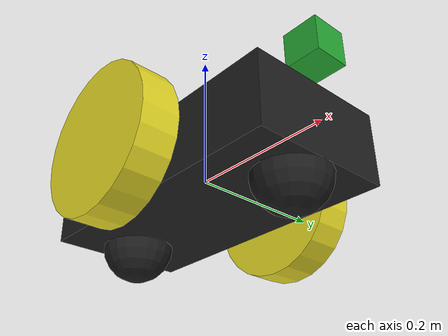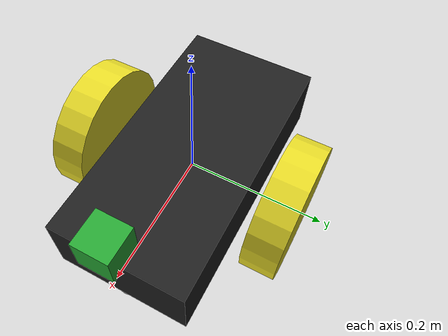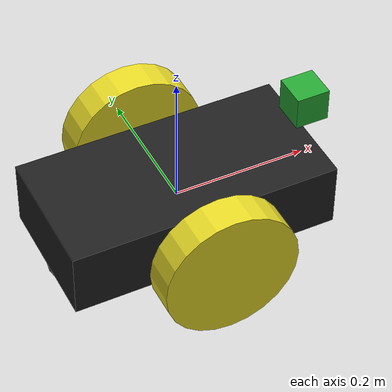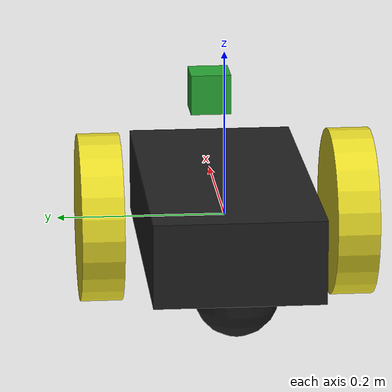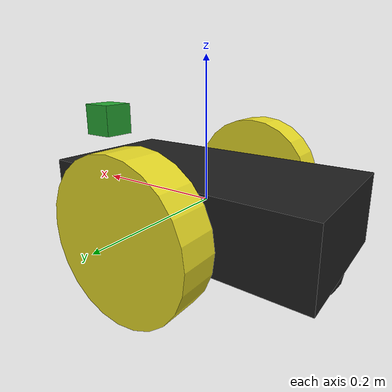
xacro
<?xml version='1.0'?>

<robot name="myrobot" xmlns:xacro="http://www.ros.org/wiki/xacro">

  <xacro:property name="cameraSize" value="0.05"/>
  <xacro:property name="cameraMass" value="0.1"/>

  <xacro:include filename="$(find m2wr_description)/urdf/materials.xacro"/>
  <xacro:include filename="$(find m2wr_description)/urdf/m2wr.gazebo"/>

  <link name='chassis'>
    <pose>0 0 0.1 0 0 0</pose>

    <inertial>
      <mass value="5.0"/>
      <origin xyz="0.0 0 0.1" rpy=" 0 0 0"/>
      <inertia
          ixx="0.1" ixy="0" ixz="0"
          iyy="0.1" iyz="0"
          izz="0.1"
      />
    </inertial>

    <collision name='collision'>
      <geometry>
        <box size=".4 .2 .1"/>
      </geometry>
    </collision>

    <visual name='chassis_visual'>
      <origin xyz="0 0 0" rpy=" 0 0 0"/>
      <geometry>
        <box size=".4 .2 .1"/>
      </geometry>
      <material name="black"/>
    </visual>
    <collision name='caster_collision'>
      <origin xyz="-0.15 0 -0.05" rpy=" 0 0 0"/>
      <geometry>
        <sphere radius="0.05"/>
      </geometry>
    </collision>

    <visual name='caster_visual'>
      <origin xyz="-0.15 0 -0.05" rpy=" 0 0 0"/>
      <geometry>
        <sphere radius="0.05"/>
      </geometry>
    </visual>

    <collision name='caster_front_collision'>
      <origin xyz="0.15 0 -0.05" rpy=" 0 0 0"/>
      <geometry>
        <sphere radius="0.05"/>
      </geometry>
    </collision>

    <visual name='caster_front_visual'>
      <origin xyz="0.15 0 -0.05" rpy=" 0 0 0"/>
      <geometry>
        <sphere radius="0.05"/>
      </geometry>
    </visual>

  </link>

  <link name="left_wheel">
    <!--origin xyz="0.1 0.13 0.1" rpy="0 1.5707 1.5707"/-->
    <collision name="collision">
      <origin xyz="0 0 0" rpy="0 1.5707 1.5707"/>
      <geometry>
        <cylinder radius="0.1" length="0.05"/>
      </geometry>
    </collision>
    <visual name="left_wheel_visual">
      <origin xyz="0 0 0" rpy="0 1.5707 1.5707"/>
      <geometry>
        <cylinder radius="0.1" length="0.05"/>
      </geometry>
      <material name="yellow"/>
    </visual>
    <inertial>
      <origin xyz="0 0 0" rpy="0 1.5707 1.5707"/>
      <mass value="5"/>
      <inertia
        ixx=".1" ixy="0.0" ixz="0.0"
        iyy=".1" iyz="0.0"
        izz=".1"/>
    </inertial>
  </link>

  <link name="right_wheel">
    <!--origin xyz="0.1 -0.13 0.1" rpy="0 1.5707 1.5707"/-->
    <collision name="collision">
      <origin xyz="0 0 0" rpy="0 1.5707 1.5707"/>
      <geometry>
        <cylinder radius="0.1" length="0.05"/>
      </geometry>
    </collision>
    <visual name="right_wheel_visual">
      <origin xyz="0 0 0" rpy="0 1.5707 1.5707"/>
      <geometry>
        <cylinder radius="0.1" length="0.05"/>
      </geometry>
      <material name="yellow"/>
    </visual>
    <inertial>
      <origin xyz="0 0 0" rpy="0 1.5707 1.5707"/>
      <mass value="5"/>
      <inertia
        ixx=".1" ixy="0.0" ixz="0.0"
        iyy=".1" iyz="0.0"
        izz=".1"/>
    </inertial>
  </link>

  <joint type="continuous" name="left_wheel_hinge">
    <origin xyz="0 0.15 0" rpy="0 0 0"/>
    <!--origin xyz="0.1 0.13 0" rpy="0 1.5707 1.5707"/-->
    <child link="left_wheel"/>
    <parent link="chassis"/>
    <axis xyz="0 1 0" rpy="0 0 0"/>
    <joint_properties damping="0.0" friction="0.0"/>
  </joint>

  <joint type="continuous" name="right_wheel_hinge">
    <origin xyz="0 -0.15 0" rpy="0 0 0"/>
    <!--origin xyz="0.1 -0.13 0" rpy="0 1.5707 1.5707"/-->
    <child link="right_wheel"/>
    <parent link="chassis"/>
    <axis xyz="0 1 0" rpy="0 0 0"/>
    <joint_properties damping="0.0" friction="0.0"/>
  </joint>

  <link name="sensor_laser">
    <visual>
      <origin xyz="0 0 0" rpy="0 0 0"/>
      <geometry>
        <box size="${cameraSize} ${cameraSize} ${cameraSize}"/>
      </geometry>
      <material name="green"/>
    </visual>

    <inertial>
      <mass value="${cameraMass}" />
      <origin xyz="0 0 0" rpy="0 0 0"/>
      <box_inertia m="${cameraMass}" x="${cameraSize}" y="${cameraSize}" z="${cameraSize}" />
      <inertia ixx="1e-6" ixy="0" ixz="0" iyy="1e-6" iyz="0" izz="1e-6" />
    </inertial>
  </link>

  <joint name="sensor_laser_joint" type="fixed">
    <axis xyz="0 1 0" />
    <origin xyz=".2 0 0.1" rpy="0 0 0"/>
    <parent link="chassis"/>
    <child link="sensor_laser"/>
  </joint>

  <!-- Hokuyo Laser -->
  <link name="imu_link">
    <collision>
      <origin xyz="0 0 0" rpy="0 0 0"/>
      <geometry>
    <box size="0.1 0.1 0.1"/>
      </geometry>
    </collision>

    <inertial>
      <mass value="1e-5" />
      <origin xyz="0 0 0" rpy="0 0 0"/>
      <inertia ixx="1e-6" ixy="0" ixz="0" iyy="1e-6" iyz="0" izz="1e-6" />
    </inertial>
  </link>

  <joint name="imu_joint" type="fixed">
    <axis xyz="0 1 0" />
    <origin xyz="0.15 0 0.1" rpy="0 0 0"/>
    <parent link="chassis"/>
    <child link="imu_link"/>
  </joint>

</robot>
